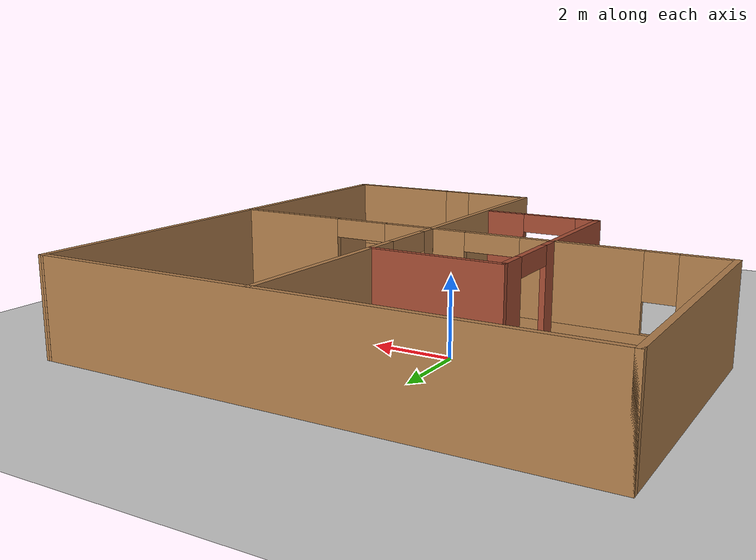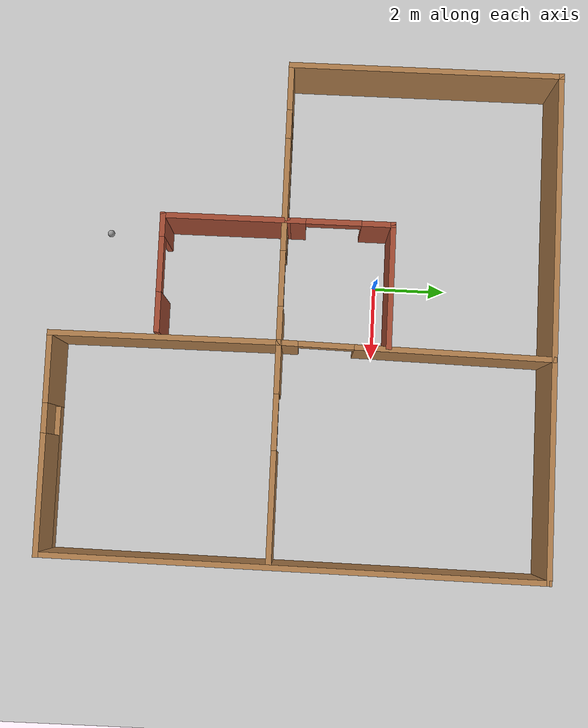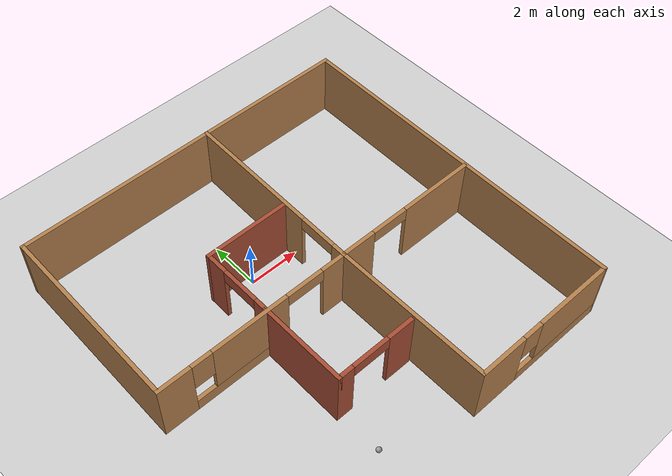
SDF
<sdf version="1.6">
 <world name="default">
  <light name="sun" type="directional">
   <pose>0 0 10 0 -0 0</pose>
   <diffuse>0.8 0.8 0.8 1</diffuse>
   <specular>0.1 0.1 0.1 1</specular>
   <attenuation>
    <range>1000</range>
    <constant>0.9</constant>
    <linear>0.01</linear>
    <quadratic>0.001</quadratic>
   </attenuation>
   <direction>-0.5 0.5 -1</direction>
  </light>
  <model name="ground_plane">
   <static>1</static>
   <link name="link">
    <collision name="collision">
     <geometry><plane><normal>0 0 1</normal><size>100 100</size></plane></geometry>
     <surface><friction><ode><mu>100</mu><mu2>50</mu2></ode></friction></surface>
    </collision>
    <visual name="visual">
     <cast_shadows>0</cast_shadows>
     <geometry><plane><normal>0 0 1</normal><size>100 100</size></plane></geometry>
     <material>
      <script><uri>file://media/materials/scripts/gazebo.material</uri><name>Gazebo/Grey</name></script>
     </material>
    </visual>
   </link>
  </model>
  <gravity>0 0 -9.8</gravity>
  <magnetic_field>6e-06 2.3e-05 -4.2e-05</magnetic_field>
  <atmosphere type="adiabatic"/>
  <physics name="default_physics" default="0" type="ode">
   <max_step_size>0.001</max_step_size>
   <real_time_factor>1</real_time_factor>
   <real_time_update_rate>1000</real_time_update_rate>
  </physics>
  <scene><ambient>0.4 0.4 0.4 1</ambient><background>0.7 0.7 0.7 1</background><shadows>1</shadows></scene>
  <spherical_coordinates>
   <surface_model>EARTH_WGS84</surface_model>
   <latitude_deg>0</latitude_deg>
   <longitude_deg>0</longitude_deg>
   <elevation>0</elevation>
   <heading_deg>0</heading_deg>
  </spherical_coordinates>
  <model name="myhouse">
   <pose>1.07967 -1.94771 0 0 -0 0</pose>
   <link name="Wall_1">
    <collision name="Wall_1_Collision">
     <geometry><box><size>7.5 0.15 2.5</size></box></geometry>
     <pose>0 0 1.25 0 -0 0</pose>
    </collision>
    <visual name="Wall_1_Visual">
     <pose>0 0 1.25 0 -0 0</pose>
     <geometry><box><size>7.5 0.15 2.5</size></box></geometry>
     <material>
      <script><uri>file://media/materials/scripts/gazebo.material</uri><name>Gazebo/Wood</name></script>
      <ambient>0.435294 0.796078 0.67451 1</ambient>
     </material>
    </visual>
    <pose>-6.80042 3.05 0 0 0 -1.5708</pose>
   </link>
   <link name="Wall_10">
    <pose>0.867844 3.04291 0 0 0 -1.5894</pose>
    <visual name="Wall_10_Visual_0">
     <pose>-1.04574 0 1.25 0 -0 0</pose>
     <geometry><box><size>5.39562 0.15 2.5</size></box></geometry>
     <material>
      <script><uri>file://media/materials/scripts/gazebo.material</uri><name>Gazebo/Wood</name></script>
      <ambient>0.435294 0.796078 0.67451 1</ambient>
     </material>
    </visual>
    <collision name="Wall_10_Collision_0">
     <geometry><box><size>5.39562 0.15 2.5</size></box></geometry>
     <pose>-1.04574 0 1.25 0 -0 0</pose>
    </collision>
    <visual name="Wall_10_Visual_1">
     <pose>3.44781 0 1.25 0 -0 0</pose>
     <geometry><box><size>0.59147 0.15 2.5</size></box></geometry>
     <material>
      <script><uri>file://media/materials/scripts/gazebo.material</uri><name>Gazebo/Wood</name></script>
      <ambient>0.435294 0.796078 0.67451 1</ambient>
     </material>
    </visual>
    <collision name="Wall_10_Collision_1">
     <geometry><box><size>0.59147 0.15 2.5</size></box></geometry>
     <pose>3.44781 0 1.25 0 -0 0</pose>
    </collision>
    <visual name="Wall_10_Visual_2">
     <pose>2.40207 0 2.25 0 -0 0</pose>
     <geometry><box><size>1.5 0.15 0.5</size></box></geometry>
     <material>
      <script><uri>file://media/materials/scripts/gazebo.material</uri><name>Gazebo/Wood</name></script>
      <ambient>0.435294 0.796078 0.67451 1</ambient>
     </material>
    </visual>
    <collision name="Wall_10_Collision_2">
     <geometry><box><size>1.5 0.15 0.5</size></box></geometry>
     <pose>2.40207 0 2.25 0 -0 0</pose>
    </collision>
   </link>
   <link name="Wall_11">
    <pose>3.72458 -0.625 0 0 -0 0</pose>
    <visual name="Wall_11_Visual_0">
     <pose>-2.27857 0 1.25 0 -0 0</pose>
     <geometry><box><size>1.44286 0.15 2.5</size></box></geometry>
     <material>
      <script><uri>file://media/materials/scripts/gazebo.material</uri><name>Gazebo/Wood</name></script>
      <ambient>0.996078 0.47451 0.0196078 1</ambient>
     </material>
    </visual>
    <collision name="Wall_11_Collision_0">
     <geometry><box><size>1.44286 0.15 2.5</size></box></geometry>
     <pose>-2.27857 0 1.25 0 -0 0</pose>
    </collision>
    <visual name="Wall_11_Visual_1">
     <pose>1.47143 0 1.25 0 -0 0</pose>
     <geometry><box><size>3.05714 0.15 2.5</size></box></geometry>
     <material>
      <script><uri>file://media/materials/scripts/gazebo.material</uri><name>Gazebo/Wood</name></script>
      <ambient>0.996078 0.47451 0.0196078 1</ambient>
     </material>
    </visual>
    <collision name="Wall_11_Collision_1">
     <geometry><box><size>3.05714 0.15 2.5</size></box></geometry>
     <pose>1.47143 0 1.25 0 -0 0</pose>
    </collision>
    <visual name="Wall_11_Visual_2">
     <pose>-0.807143 0 2.25 0 -0 0</pose>
     <geometry><box><size>1.5 0.15 0.5</size></box></geometry>
     <material>
      <script><uri>file://media/materials/scripts/gazebo.material</uri><name>Gazebo/Wood</name></script>
      <ambient>0.996078 0.47451 0.0196078 1</ambient>
     </material>
    </visual>
    <collision name="Wall_11_Collision_2">
     <geometry><box><size>1.5 0.15 0.5</size></box></geometry>
     <pose>-0.807143 0 2.25 0 -0 0</pose>
    </collision>
   </link>
   <link name="Wall_13">
    <collision name="Wall_13_Collision">
     <geometry><box><size>3.5 0.15 2.5</size></box></geometry>
     <pose>0 0 1.25 0 -0 0</pose>
    </collision>
    <visual name="Wall_13_Visual">
     <pose>0 0 1.25 0 -0 0</pose>
     <geometry><box><size>3.5 0.15 2.5</size></box></geometry>
     <material>
      <script><uri>file://media/materials/scripts/gazebo.material</uri><name>Gazebo/Bricks</name></script>
      <ambient>1 1 1 1</ambient>
     </material>
    </visual>
    <pose>-0.830667 2.30583 0 0 -0 3.14159</pose>
   </link>
   <link name="Wall_14">
    <pose>-2.50567 0.880826 0 0 0 -1.5708</pose>
    <visual name="Wall_14_Visual_0">
     <pose>-1.03541 0 1.25 0 -0 0</pose>
     <geometry><box><size>0.929175 0.15 2.5</size></box></geometry>
     <material>
      <script><uri>file://media/materials/scripts/gazebo.material</uri><name>Gazebo/Bricks</name></script>
      <ambient>1 1 1 1</ambient>
     </material>
    </visual>
    <collision name="Wall_14_Collision_0">
     <geometry><box><size>0.929175 0.15 2.5</size></box></geometry>
     <pose>-1.03541 0 1.25 0 -0 0</pose>
    </collision>
    <visual name="Wall_14_Visual_1">
     <pose>1.21459 0 1.25 0 -0 0</pose>
     <geometry><box><size>0.570825 0.15 2.5</size></box></geometry>
     <material>
      <script><uri>file://media/materials/scripts/gazebo.material</uri><name>Gazebo/Bricks</name></script>
      <ambient>1 1 1 1</ambient>
     </material>
    </visual>
    <collision name="Wall_14_Collision_1">
     <geometry><box><size>0.570825 0.15 2.5</size></box></geometry>
     <pose>1.21459 0 1.25 0 -0 0</pose>
    </collision>
    <visual name="Wall_14_Visual_2">
     <pose>0.179175 0 2.25 0 -0 0</pose>
     <geometry><box><size>1.5 0.15 0.5</size></box></geometry>
     <material>
      <script><uri>file://media/materials/scripts/gazebo.material</uri><name>Gazebo/Bricks</name></script>
      <ambient>1 1 1 1</ambient>
     </material>
    </visual>
    <collision name="Wall_14_Collision_2">
     <geometry><box><size>1.5 0.15 0.5</size></box></geometry>
     <pose>0.179175 0 2.25 0 -0 0</pose>
    </collision>
   </link>
   <link name="Wall_17">
    <collision name="Wall_17_Collision">
     <geometry><box><size>3.5 0.15 2.5</size></box></geometry>
     <pose>0 0 1.25 0 -0 0</pose>
    </collision>
    <visual name="Wall_17_Visual">
     <pose>0 0 1.25 0 -0 0</pose>
     <geometry><box><size>3.5 0.15 2.5</size></box></geometry>
     <material>
      <script><uri>file://media/materials/scripts/gazebo.material</uri><name>Gazebo/Bricks</name></script>
      <ambient>1 1 1 1</ambient>
     </material>
    </visual>
    <pose>-2.50567 -2.21917 0 0 0 -1.5708</pose>
   </link>
   <link name="Wall_18">
    <pose>-0.955667 -3.89417 0 0 -0 0</pose>
    <visual name="Wall_18_Visual_0">
     <pose>-1.29247 0 1.25 0 -0 0</pose>
     <geometry><box><size>0.665053 0.15 2.5</size></box></geometry>
     <material>
      <script><uri>file://media/materials/scripts/gazebo.material</uri><name>Gazebo/Bricks</name></script>
      <ambient>1 1 1 1</ambient>
     </material>
    </visual>
    <collision name="Wall_18_Collision_0">
     <geometry><box><size>0.665053 0.15 2.5</size></box></geometry>
     <pose>-1.29247 0 1.25 0 -0 0</pose>
    </collision>
    <visual name="Wall_18_Visual_1">
     <pose>1.08253 0 1.25 0 -0 0</pose>
     <geometry><box><size>1.08495 0.15 2.5</size></box></geometry>
     <material>
      <script><uri>file://media/materials/scripts/gazebo.material</uri><name>Gazebo/Bricks</name></script>
      <ambient>1 1 1 1</ambient>
     </material>
    </visual>
    <collision name="Wall_18_Collision_1">
     <geometry><box><size>1.08495 0.15 2.5</size></box></geometry>
     <pose>1.08253 0 1.25 0 -0 0</pose>
    </collision>
    <visual name="Wall_18_Visual_2">
     <pose>-0.209947 0 2.25 0 -0 0</pose>
     <geometry><box><size>1.5 0.15 0.5</size></box></geometry>
     <material>
      <script><uri>file://media/materials/scripts/gazebo.material</uri><name>Gazebo/Bricks</name></script>
      <ambient>1 1 1 1</ambient>
     </material>
    </visual>
    <collision name="Wall_18_Collision_2">
     <geometry><box><size>1.5 0.15 0.5</size></box></geometry>
     <pose>-0.209947 0 2.25 0 -0 0</pose>
    </collision>
   </link>
   <link name="Wall_2">
    <pose>-3.00042 -0.625 0 0 -0 0</pose>
    <visual name="Wall_2_Visual_0">
     <pose>-3.21297 0 1.25 0 -0 0</pose>
     <geometry><box><size>1.32406 0.15 2.5</size></box></geometry>
     <material>
      <script><uri>file://media/materials/scripts/gazebo.material</uri><name>Gazebo/Wood</name></script>
      <ambient>0.435294 0.796078 0.67451 1</ambient>
     </material>
    </visual>
    <collision name="Wall_2_Collision_0">
     <geometry><box><size>1.32406 0.15 2.5</size></box></geometry>
     <pose>-3.21297 0 1.25 0 -0 0</pose>
    </collision>
    <visual name="Wall_2_Visual_1">
     <pose>3.35058 0 1.25 0 -0 0</pose>
     <geometry><box><size>1.04883 0.15 2.5</size></box></geometry>
     <material>
      <script><uri>file://media/materials/scripts/gazebo.material</uri><name>Gazebo/Wood</name></script>
      <ambient>0.435294 0.796078 0.67451 1</ambient>
     </material>
    </visual>
    <collision name="Wall_2_Collision_1">
     <geometry><box><size>1.04883 0.15 2.5</size></box></geometry>
     <pose>3.35058 0 1.25 0 -0 0</pose>
    </collision>
    <visual name="Wall_2_Visual_2">
     <pose>-0.612385 0 0.25 0 -0 0</pose>
     <geometry><box><size>3.8771 0.15 0.5</size></box></geometry>
     <material>
      <script><uri>file://media/materials/scripts/gazebo.material</uri><name>Gazebo/Wood</name></script>
      <ambient>0.435294 0.796078 0.67451 1</ambient>
     </material>
    </visual>
    <collision name="Wall_2_Collision_2">
     <geometry><box><size>3.8771 0.15 0.5</size></box></geometry>
     <pose>-0.612385 0 0.25 0 -0 0</pose>
    </collision>
    <visual name="Wall_2_Visual_3">
     <pose>-0.212385 0 1.5 0 -0 0</pose>
     <geometry><box><size>3.0771 0.15 2</size></box></geometry>
     <material>
      <script><uri>file://media/materials/scripts/gazebo.material</uri><name>Gazebo/Wood</name></script>
      <ambient>0.435294 0.796078 0.67451 1</ambient>
     </material>
    </visual>
    <collision name="Wall_2_Collision_3">
     <geometry><box><size>3.0771 0.15 2</size></box></geometry>
     <pose>-0.212385 0 1.5 0 -0 0</pose>
    </collision>
    <visual name="Wall_2_Visual_4">
     <pose>-2.15094 0 1.9 0 -0 0</pose>
     <geometry><box><size>0.8 0.15 1.2</size></box></geometry>
     <material>
      <script><uri>file://media/materials/scripts/gazebo.material</uri><name>Gazebo/Wood</name></script>
      <ambient>0.435294 0.796078 0.67451 1</ambient>
     </material>
    </visual>
    <collision name="Wall_2_Collision_4">
     <geometry><box><size>0.8 0.15 1.2</size></box></geometry>
     <pose>-2.15094 0 1.9 0 -0 0</pose>
    </collision>
    <visual name="Wall_2_Visual_5">
     <pose>2.07617 0 2.25 0 -0 0</pose>
     <geometry><box><size>1.5 0.15 0.5</size></box></geometry>
     <material>
      <script><uri>file://media/materials/scripts/gazebo.material</uri><name>Gazebo/Wood</name></script>
      <ambient>0.435294 0.796078 0.67451 1</ambient>
     </material>
    </visual>
    <collision name="Wall_2_Collision_5">
     <geometry><box><size>1.5 0.15 0.5</size></box></geometry>
     <pose>2.07617 0 2.25 0 -0 0</pose>
    </collision>
   </link>
   <link name="Wall_3">
    <collision name="Wall_3_Collision">
     <geometry><box><size>6.25 0.15 2.5</size></box></geometry>
     <pose>0 0 1.25 0 -0 0</pose>
    </collision>
    <visual name="Wall_3_Visual">
     <pose>0 0 1.25 0 -0 0</pose>
     <geometry><box><size>6.25 0.15 2.5</size></box></geometry>
     <material>
      <script><uri>file://media/materials/scripts/gazebo.material</uri><name>Gazebo/Wood</name></script>
      <ambient>0.996078 0.47451 0.0196078 1</ambient>
     </material>
    </visual>
    <pose>0.799584 -3.675 0 0 0 -1.5708</pose>
   </link>
   <link name="Wall_4">
    <pose>3.72458 -6.725 0 0 -0 0</pose>
    <visual name="Wall_4_Visual_0">
     <pose>-2.02358 0 1.25 0 -0 0</pose>
     <geometry><box><size>1.95284 0.15 2.5</size></box></geometry>
     <material>
      <script><uri>file://media/materials/scripts/gazebo.material</uri><name>Gazebo/Wood</name></script>
      <ambient>1 1 1 1</ambient>
     </material>
    </visual>
    <collision name="Wall_4_Collision_0">
     <geometry><box><size>1.95284 0.15 2.5</size></box></geometry>
     <pose>-2.02358 0 1.25 0 -0 0</pose>
    </collision>
    <visual name="Wall_4_Visual_1">
     <pose>0.976418 0 0.25 0 -0 0</pose>
     <geometry><box><size>4.04716 0.15 0.5</size></box></geometry>
     <material>
      <script><uri>file://media/materials/scripts/gazebo.material</uri><name>Gazebo/Wood</name></script>
      <ambient>1 1 1 1</ambient>
     </material>
    </visual>
    <collision name="Wall_4_Collision_1">
     <geometry><box><size>4.04716 0.15 0.5</size></box></geometry>
     <pose>0.976418 0 0.25 0 -0 0</pose>
    </collision>
    <visual name="Wall_4_Visual_2">
     <pose>1.37642 0 1.5 0 -0 0</pose>
     <geometry><box><size>3.24716 0.15 2</size></box></geometry>
     <material>
      <script><uri>file://media/materials/scripts/gazebo.material</uri><name>Gazebo/Wood</name></script>
      <ambient>1 1 1 1</ambient>
     </material>
    </visual>
    <collision name="Wall_4_Collision_2">
     <geometry><box><size>3.24716 0.15 2</size></box></geometry>
     <pose>1.37642 0 1.5 0 -0 0</pose>
    </collision>
    <visual name="Wall_4_Visual_3">
     <pose>-0.647164 0 1.9 0 -0 0</pose>
     <geometry><box><size>0.8 0.15 1.2</size></box></geometry>
     <material>
      <script><uri>file://media/materials/scripts/gazebo.material</uri><name>Gazebo/Wood</name></script>
      <ambient>1 1 1 1</ambient>
     </material>
    </visual>
    <collision name="Wall_4_Collision_3">
     <geometry><box><size>0.8 0.15 1.2</size></box></geometry>
     <pose>-0.647164 0 1.9 0 -0 0</pose>
    </collision>
   </link>
   <link name="Wall_7">
    <collision name="Wall_7_Collision">
     <geometry><box><size>13.75 0.15 2.5</size></box></geometry>
     <pose>0 0 1.25 0 -0 0</pose>
    </collision>
    <visual name="Wall_7_Visual">
     <pose>0 0 1.25 0 -0 0</pose>
     <geometry><box><size>13.75 0.15 2.5</size></box></geometry>
     <material>
      <script><uri>file://media/materials/scripts/gazebo.material</uri><name>Gazebo/Wood</name></script>
      <ambient>0.435294 0.796078 0.67451 1</ambient>
     </material>
    </visual>
    <pose>-0.000416 6.725 0 0 -0 0</pose>
   </link>
   <link name="Wall_8">
    <collision name="Wall_8_Collision">
     <geometry><box><size>13.6008 0.15 2.5</size></box></geometry>
     <pose>0 0 1.25 0 -0 0</pose>
    </collision>
    <visual name="Wall_8_Visual">
     <pose>0 0 1.25 0 -0 0</pose>
     <geometry><box><size>13.6008 0.15 2.5</size></box></geometry>
     <material>
      <script><uri>file://media/materials/scripts/gazebo.material</uri><name>Gazebo/Wood</name></script>
      <ambient>0.996078 0.47451 0.0196078 1</ambient>
     </material>
    </visual>
    <pose>6.72458 0 0 0 0 -1.58195</pose>
   </link>
   <static>1</static>
  </model>
  <model name="my_ball">
   <link name="link_0">
    <inertial>
     <mass>1</mass>
     <inertia><ixx>0.1</ixx><ixy>0</ixy><ixz>0</ixz><iyy>0.1</iyy><iyz>0</iyz><izz>0.1</izz></inertia>
    </inertial>
    <visual name="visual">
     <geometry><sphere><radius>0.1</radius></sphere></geometry>
     <material>
      <lighting>1</lighting>
      <script><uri>file://media/materials/scripts/gazebo.material</uri><name>Gazebo/Grey</name></script>
      <shader type="pixel"><normal_map>__default__</normal_map></shader>
      <ambient>1 1 1 1</ambient>
      <diffuse>1 1 1 1</diffuse>
      <specular>1 1 1 1</specular>
      <emissive>1 1 1 1</emissive>
     </material>
    </visual>
    <collision name="collision">
     <geometry><sphere><radius>0.1</radius></sphere></geometry>
     <surface>
      <friction>
       <ode><mu>1</mu><mu2>1</mu2><fdir1>0 0 0</fdir1><slip1>0</slip1><slip2>0</slip2></ode>
       <torsional>
        <coefficient>1</coefficient>
        <patch_radius>0</patch_radius>
        <surface_radius>0</surface_radius>
        <use_patch_radius>1</use_patch_radius>
        <ode><slip>0</slip></ode>
       </torsional>
      </friction>
      <bounce><restitution_coefficient>0</restitution_coefficient><threshold>1e+06</threshold></bounce>
      <contact>
       <collide_without_contact>0</collide_without_contact>
       <collide_without_contact_bitmask>1</collide_without_contact_bitmask>
       <collide_bitmask>1</collide_bitmask>
       <ode>
        <soft_cfm>0</soft_cfm>
        <soft_erp>0.2</soft_erp>
        <kp>1e+13</kp>
        <kd>1</kd>
        <max_vel>0.01</max_vel>
        <min_depth>0</min_depth>
       </ode>
       <bullet>
        <split_impulse>1</split_impulse>
        <split_impulse_penetration_threshold>-0.01</split_impulse_penetration_threshold>
        <soft_cfm>0</soft_cfm>
        <soft_erp>0.2</soft_erp>
        <kp>1e+13</kp>
        <kd>1</kd>
       </bullet>
      </contact>
     </surface>
    </collision>
   </link>
   <static>0</static>
   <pose>-1.2657 -7.55143 0.1 0 -0 0</pose>
  </model>
 </world>
</sdf>
